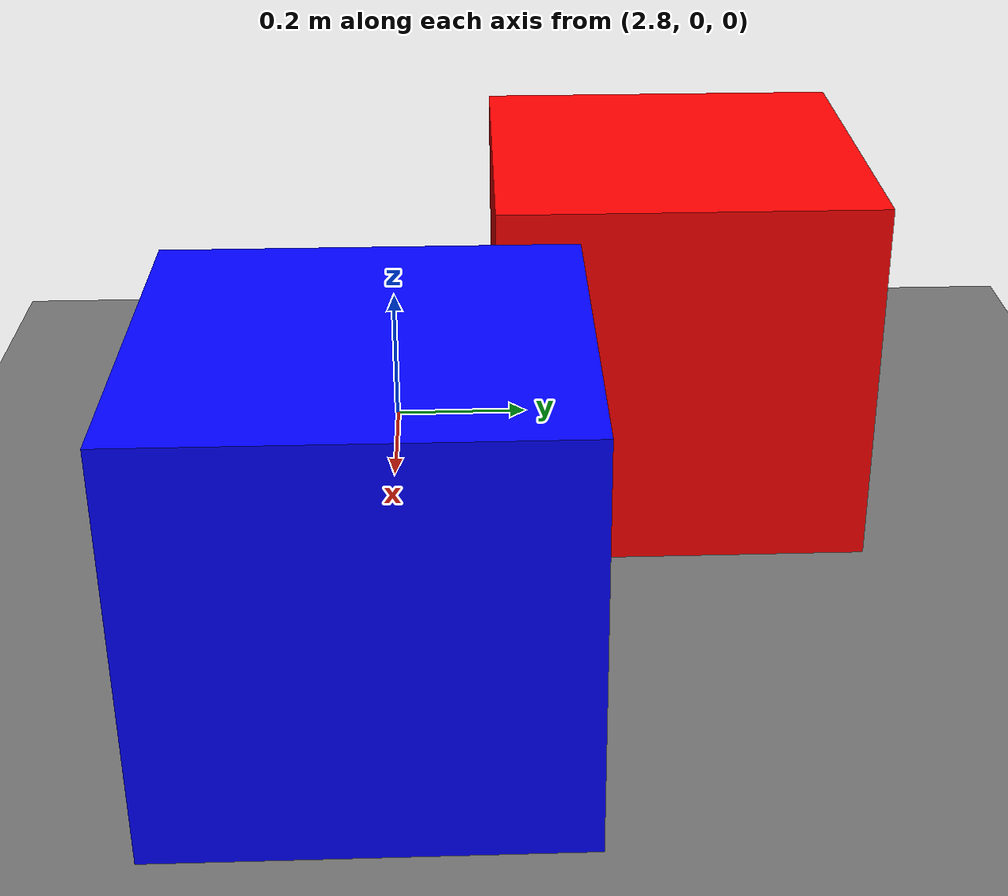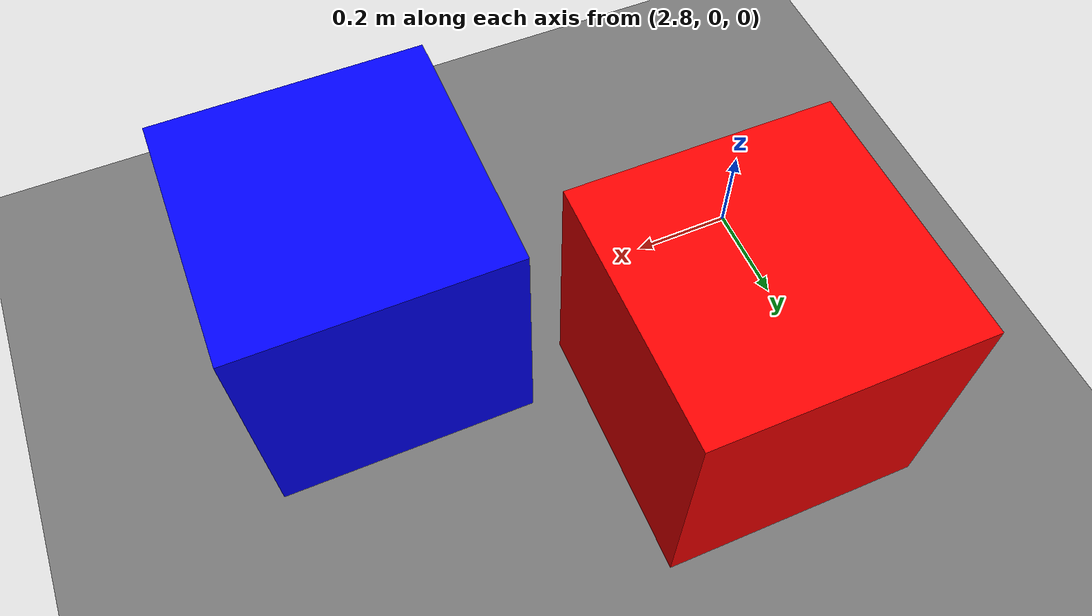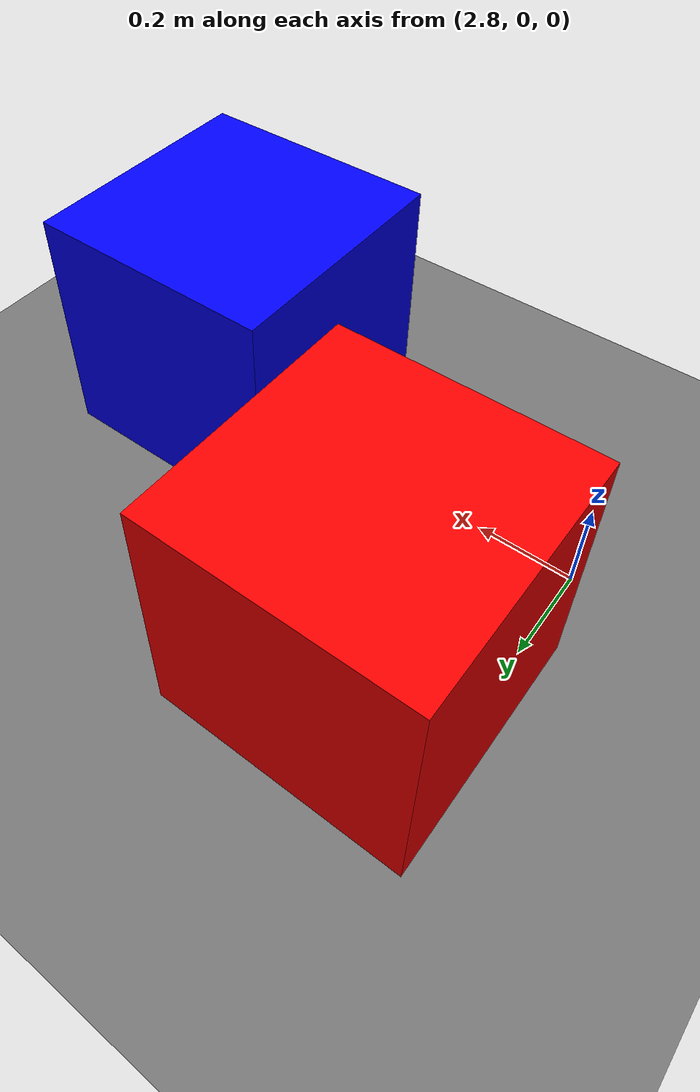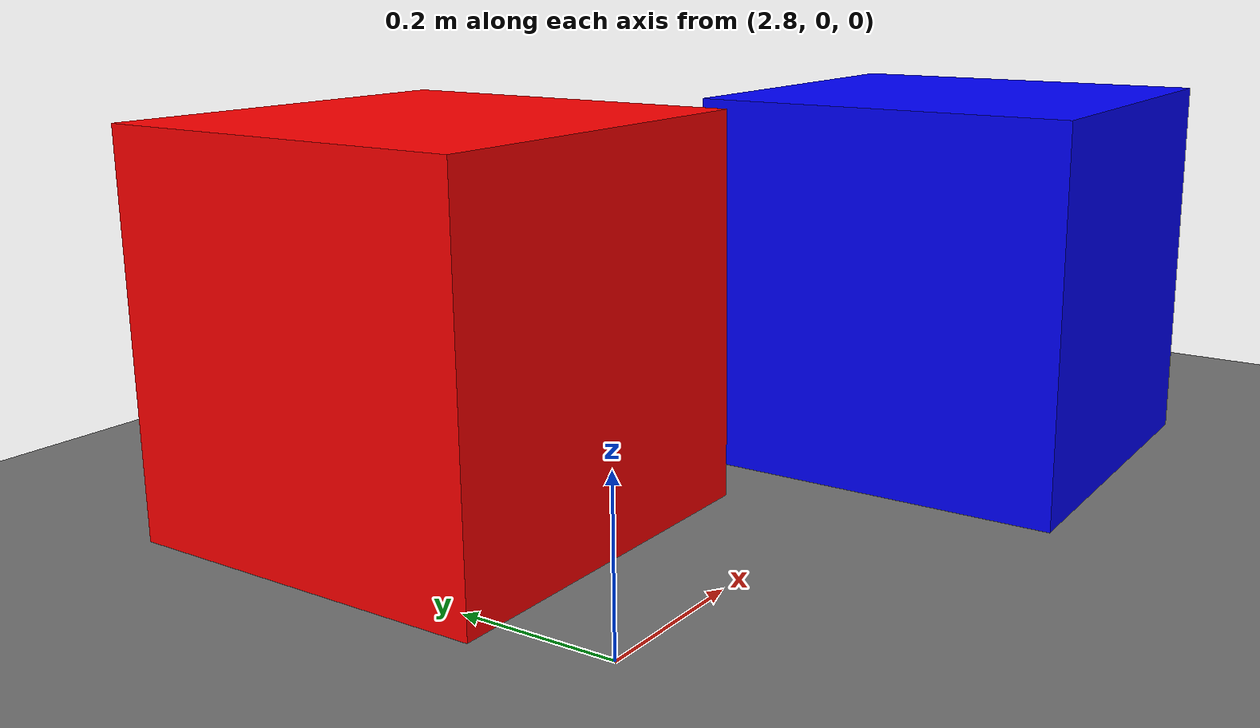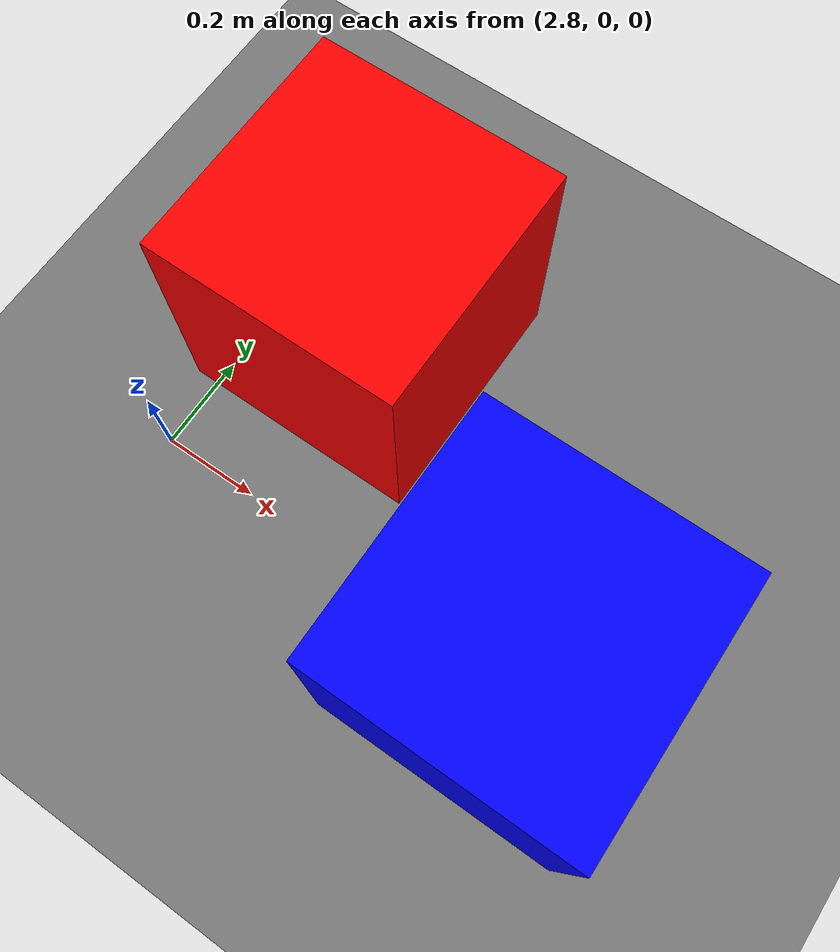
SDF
<?xml version="1.0" ?>
<sdf version="1.6">
  <world name="c7_occlusion">
    <scene>
      <ambient>0.7 0.7 0.7 1</ambient>
      <background>0.5 0.5 0.5 1</background>
    </scene>

    <include>
      <uri>model://sun</uri>
    </include>

    <model name="ground_plane_c7">
      <static>true</static>
      <link name="link">
        <collision name="collision">
          <geometry>
            <plane>
              <normal>0 0 1</normal>
              <size>30 30</size>
            </plane>
          </geometry>
        </collision>
        <visual name="visual">
          <geometry>
            <plane>
              <normal>0 0 1</normal>
              <size>30 30</size>
            </plane>
          </geometry>
          <material>
            <ambient>0.45 0.45 0.45 1</ambient>
            <diffuse>0.45 0.45 0.45 1</diffuse>
          </material>
        </visual>
      </link>
    </model>

    <model name="front_cube">
      <!-- Базово вынесен по Y, чтобы back_cube был виден до окклюзии.
           В тестах окклюдер (front_cube) двигается по Y к центру. -->
      <pose>3.0 0.40 0.25 0 0 0</pose>
      <static>false</static>
      <link name="link">
        <gravity>false</gravity>
        <collision name="collision">
          <geometry>
            <box><size>0.5 0.5 0.5</size></box>
          </geometry>
        </collision>
        <visual name="visual">
          <geometry>
            <box><size>0.5 0.5 0.5</size></box>
          </geometry>
          <material>
            <ambient>1 0 0 1</ambient>
            <diffuse>1 0 0 1</diffuse>
          </material>
        </visual>
      </link>
    </model>

    <model name="back_cube">
      <!-- Blue object в центре FOV; окклюзия управляется движением front_cube по Y. -->
      <pose>3.6 0.0 0.25 0 0 0</pose>
      <static>false</static>
      <link name="link">
        <gravity>false</gravity>
        <collision name="collision">
          <geometry>
            <box><size>0.5 0.5 0.5</size></box>
          </geometry>
        </collision>
        <visual name="visual">
          <geometry>
            <box><size>0.5 0.5 0.5</size></box>
          </geometry>
          <material>
            <ambient>0 0 1 1</ambient>
            <diffuse>0 0 1 1</diffuse>
            <emissive>0 0 0.35 1</emissive>
          </material>
        </visual>
      </link>
    </model>
  </world>
</sdf>
